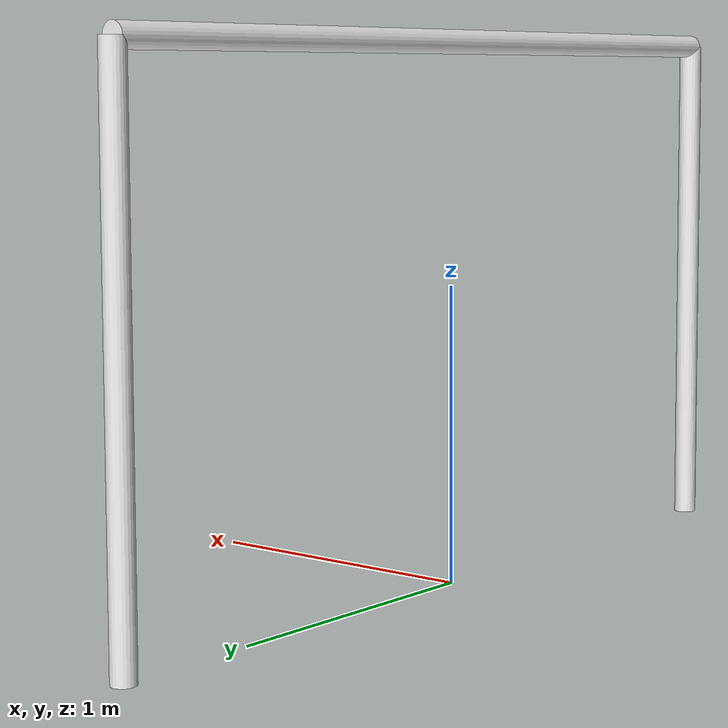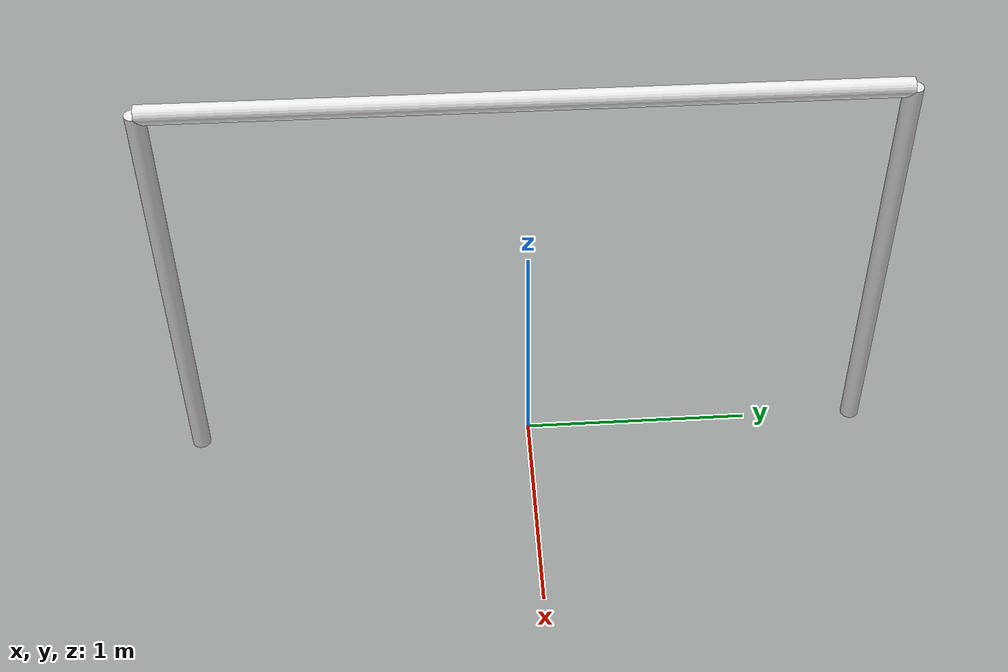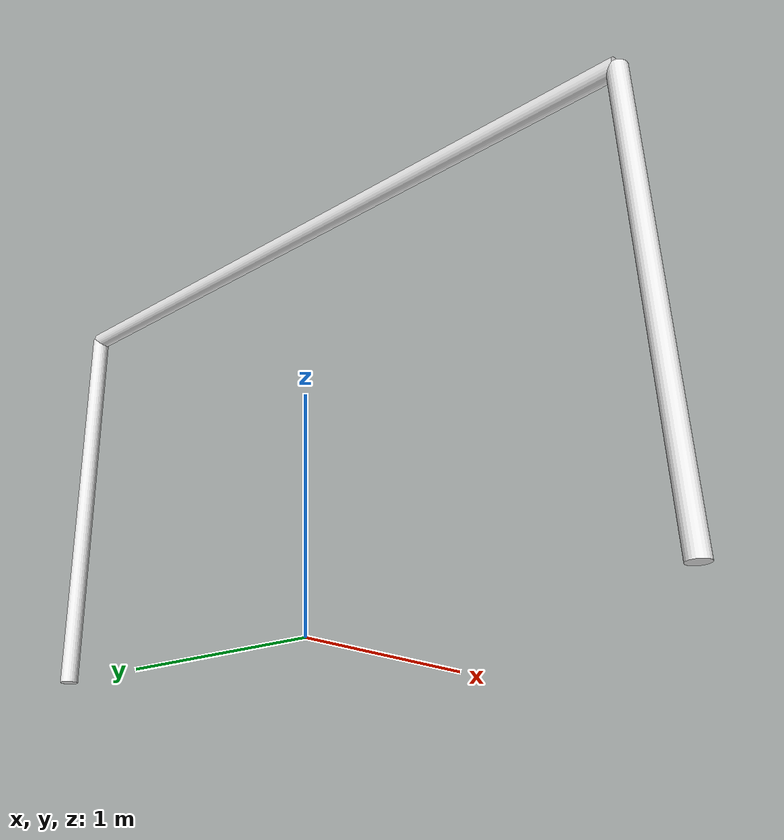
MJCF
<mujoco model="goal">
  <compiler angle="radian"/>

  <default>
    <default class="goal">
      <geom type="cylinder" rgba="0.9 0.9 0.9 1.0" contype="1" conaffinity="1" condim="1"/>
    </default>
  </default>

  <worldbody>
    <!-- Left post: at y=-1.5m, centered at z=0.9m, radius=0.04, half-height=0.9 -->
    <body name="left_post" pos="0 -1.5 0.9" childclass="goal">
      <geom name="left_post_geom" size="0.04 0.9"/>
    </body>

    <!-- Right post: at y=1.5m, centered at z=0.9m -->
    <body name="right_post" pos="0 1.5 0.9" childclass="goal">
      <geom name="right_post_geom" size="0.04 0.9"/>
    </body>

    <!-- Crossbar: at z=1.8m, half-height=1.5m, rotated 90° about X -->
    <body name="crossbar" pos="0 0 1.8" quat="0.7071 0.7071 0 0" childclass="goal">
      <geom name="crossbar_geom" size="0.04 1.5"/>
    </body>
  </worldbody>
</mujoco>
